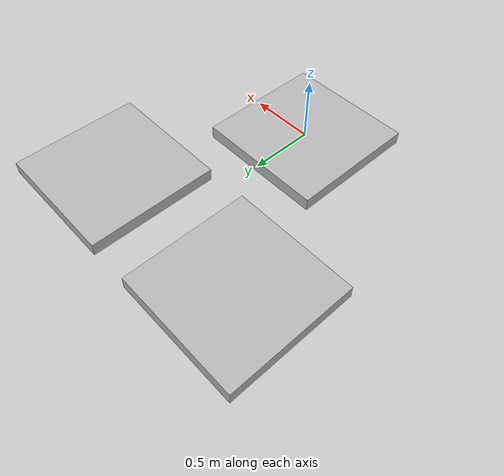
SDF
<?xml version="1.0"?>
<sdf version="1.5">
    <model name="platform_with_qr_new_additional">
        <static>true</static>
        <link name="link">
            <collision name="collision">
                <pose>0 0 0 0 0 0</pose>
                <geometry>
                    <mesh>
                        <uri>model://platform_with_qr_new_additional/meshes/metki.dae</uri>
                    </mesh>
                </geometry>
            </collision>
            <visual name="visual">
              <pose>0 0 0 0 0 0</pose>
              <geometry>
              <mesh>
                 <uri>model://platform_with_qr_new_additional/meshes/metki.dae</uri>
              </mesh>
              </geometry>
             </visual>
        </link>
    </model>
</sdf>
